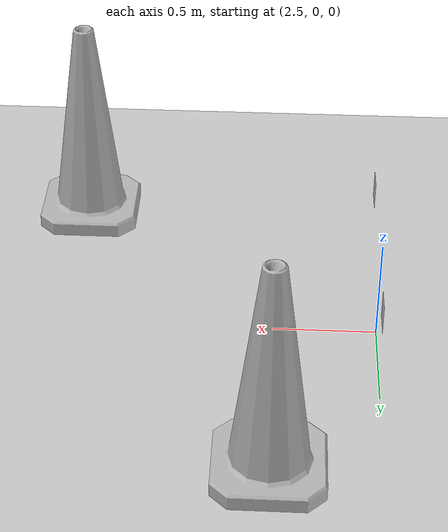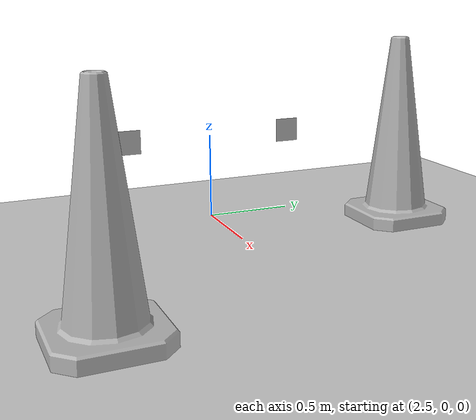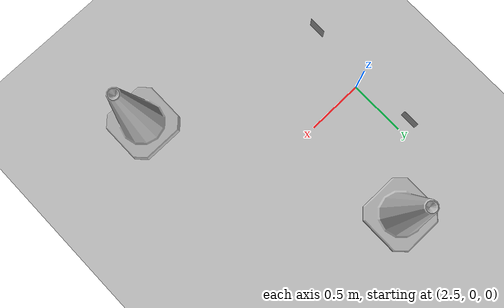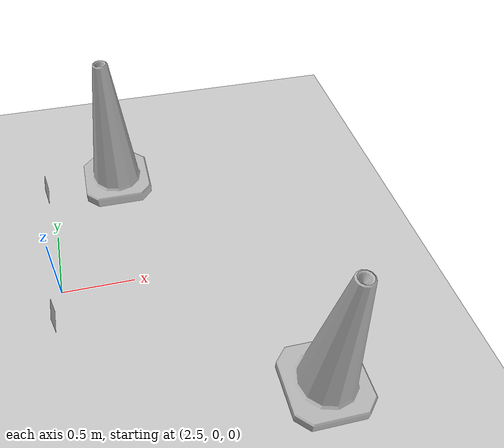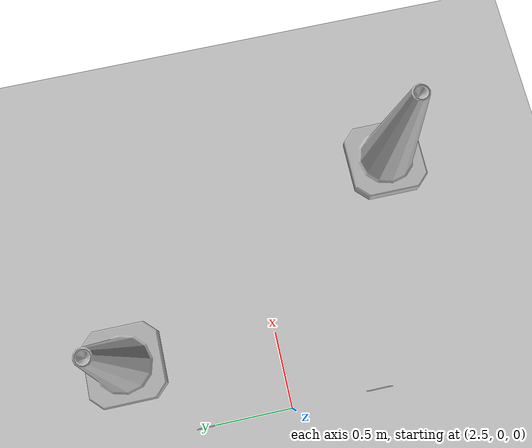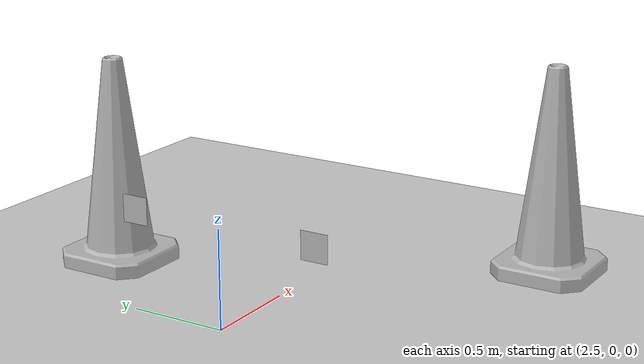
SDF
<?xml version="1.0" ?>
<sdf version="1.5">
  <world name="cones">
    <!-- A ground plane -->
    <include>
      <uri>model://ground_plane</uri>
    </include>
    <!-- A global light source -->
    <include>
      <uri>model://sun</uri>
    </include>
    <include>
      <uri>model://construction_cone</uri>
      <name>construction_cone1</name>
      <pose>4.0 -1.0 0 0 0 0</pose>
    </include>
    <include>
      <uri>model://construction_cone</uri>
      <name>construction_cone2</name>
      <pose>3.0 1.0 0 0 0 0</pose>
    </include>
    <include>
      <uri>model://arucotag0</uri>
      <name>arucotag0</name>
      <pose>2.5 -0.5 0.5 0 1.570796326794897 0</pose>
    </include>
    <include>
      <uri>model://arucotag1</uri>
      <name>arucotag1</name>
      <pose>2.5 0.5 0.5 0 1.570796326794897 0</pose>
    </include>
    <gui>
      <camera name='gzclient_camera'>
        <pose>-1.5 -4.0 2.0 0 0.32 0.85</pose>
      </camera>
    </gui>
</world>
</sdf>

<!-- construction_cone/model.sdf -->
<sdf version="1.5">
  <model name="Construction Cone">
    <link name="link">
      <collision name="collision">
        <geometry>
          <mesh>
            <scale>10 10 10</scale>
            <uri>file://isr-testbed/construction_cone/meshes/construction_cone.dae</uri>
          </mesh>
        </geometry>
      </collision>
      <visual name="visual">
        <geometry>
          <mesh>
            <scale>10 10 10</scale>
            <uri>file://isr-testbed/construction_cone/meshes/construction_cone.dae</uri>
          </mesh>
        </geometry>
      </visual>
    </link>
  </model>
</sdf>

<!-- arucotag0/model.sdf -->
<sdf version='1.5'>
  <model name='arucotag0'>
    <link name='tag'>
      <pose frame=''>0 0 0.01 0 -0 0</pose>
      <inertial>
        <pose frame=''>0 0 0 0 -0 0</pose>
        <mass>0.1</mass>
        <inertia>
          <ixx>1</ixx>
          <ixy>0</ixy>
          <ixz>0</ixz>
          <iyy>1</iyy>
          <iyz>0</iyz>
          <izz>1</izz>
        </inertia>
      </inertial>
      <visual name='ARUCO_visual'>
        <pose frame=''>0 0 0.01 0 -0 0</pose>
        <geometry>
          <box>
            <size>0.14 0.14 0.0001</size>
          </box>
        </geometry>
        <material>
          <script>
            <uri>model://arucotag0/materials/scripts</uri>
            <uri>model://arucotag0/materials/textures</uri>
            <name>arucotag0</name>
          </script>
        </material>
      </visual>
      <gravity>0</gravity>
      <velocity_decay/>
      <self_collide>0</self_collide>
    </link>
  </model>
</sdf>

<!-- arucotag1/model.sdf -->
<sdf version='1.5'>
  <model name='arucotag1'>
    <link name='tag'>
      <pose frame=''>0 0 0.01 0 -0 0</pose>
      <inertial>
        <pose frame=''>0 0 0 0 -0 0</pose>
        <mass>0.1</mass>
        <inertia>
          <ixx>1</ixx>
          <ixy>0</ixy>
          <ixz>0</ixz>
          <iyy>1</iyy>
          <iyz>0</iyz>
          <izz>1</izz>
        </inertia>
      </inertial>
      <visual name='ARUCO_visual'>
        <pose frame=''>0 0 0.01 0 -0 0</pose>
        <geometry>
          <box>
            <size>0.14 0.14 0.0001</size>
          </box>
        </geometry>
        <material>
          <script>
            <uri>model://arucotag1/materials/scripts</uri>
            <uri>model://arucotag1/materials/textures</uri>
            <name>arucotag1</name>
          </script>
        </material>
      </visual>
      <gravity>0</gravity>
      <velocity_decay/>
      <self_collide>0</self_collide>
    </link>
  </model>
</sdf>
